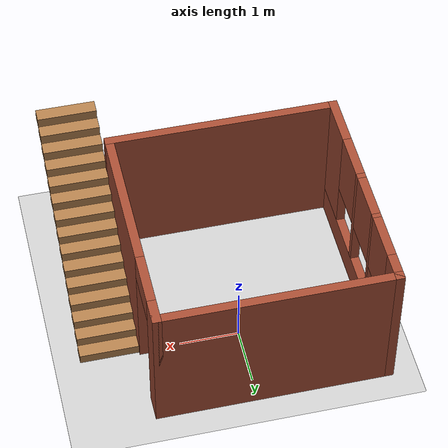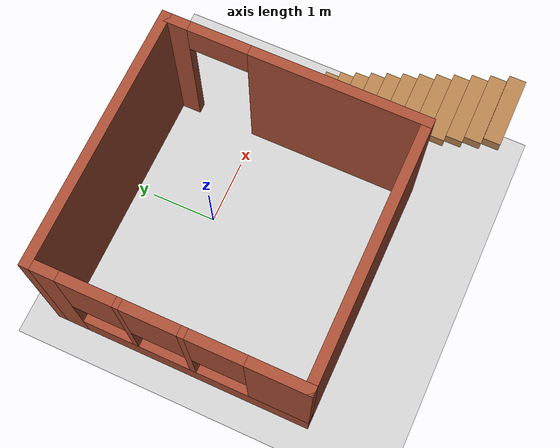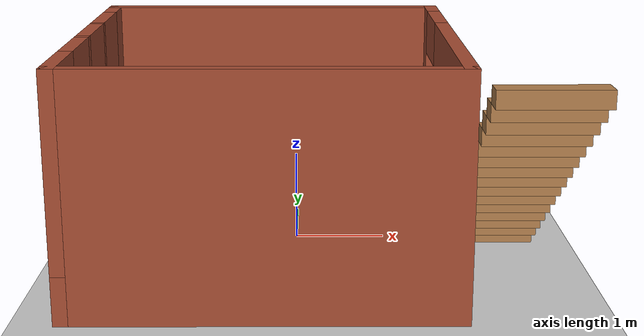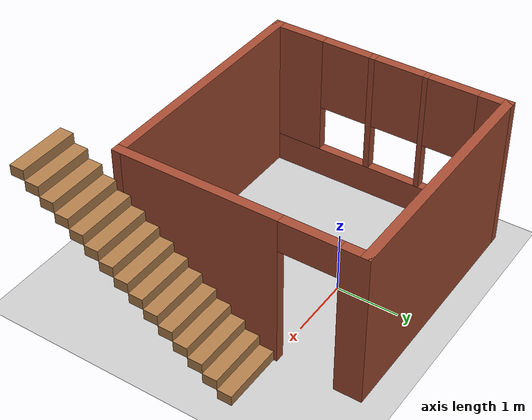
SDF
<sdf version="1.7">
 <world name="default">
  <light name="sun" type="directional">
   <pose>0 0 10 0 -0 0</pose>
   <diffuse>0.8 0.8 0.8 1</diffuse>
   <specular>0.2 0.2 0.2 1</specular>
   <attenuation>
    <range>1000</range>
    <constant>0.9</constant>
    <linear>0.01</linear>
    <quadratic>0.001</quadratic>
   </attenuation>
   <direction>-0.5 0.1 -0.9</direction>
  </light>
  <model name="ground_plane">
   <static>1</static>
   <link name="link">
    <collision name="collision">
     <geometry><plane><normal>0 0 1</normal><size>100 100</size></plane></geometry>
     <surface>
      <contact><collide_bitmask>65535</collide_bitmask></contact>
      <friction><ode><mu>100</mu><mu2>50</mu2></ode></friction>
     </surface>
    </collision>
    <visual name="visual">
     <cast_shadows>0</cast_shadows>
     <geometry><plane><normal>0 0 1</normal><size>100 100</size></plane></geometry>
     <material>
      <script><uri>file://media/materials/scripts/gazebo.material</uri><name>Gazebo/Grey</name></script>
     </material>
    </visual>
   </link>
  </model>
  <gravity>0 0 -9.8</gravity>
  <magnetic_field>6e-06 2.3e-05 -4.2e-05</magnetic_field>
  <atmosphere type="adiabatic"/>
  <physics type="ode">
   <max_step_size>0.001</max_step_size>
   <real_time_factor>1</real_time_factor>
   <real_time_update_rate>1000</real_time_update_rate>
  </physics>
  <scene><ambient>0.4 0.4 0.4 1</ambient><background>0.7 0.7 0.7 1</background><shadows>1</shadows></scene>
  <spherical_coordinates>
   <surface_model>EARTH_WGS84</surface_model>
   <latitude_deg>0</latitude_deg>
   <longitude_deg>0</longitude_deg>
   <elevation>0</elevation>
   <heading_deg>0</heading_deg>
  </spherical_coordinates>
  <model name="testing_world">
   <pose>0.201157 -1.03436 0 0 -0 0</pose>
   <link name="Stairs_0">
    <visual name="Stairs_0_Visual_0">
     <pose>1.99832 0.93694 0.083333 0 -0 0</pose>
     <geometry><box><size>1 0.233333 0.166667</size></box></geometry>
     <material>
      <script><uri>file://media/materials/scripts/gazebo.material</uri><name>Gazebo/Wood</name></script>
      <ambient>1 1 1 1</ambient>
     </material>
     <meta><layer>0</layer></meta>
    </visual>
    <collision name="Stairs_0_Collision_0">
     <geometry><box><size>1 0.233333 0.166667</size></box></geometry>
     <pose>1.99832 0.93694 0.083333 0 -0 0</pose>
    </collision>
    <visual name="Stairs_0_Visual_1">
     <pose>1.99832 0.703607 0.25 0 -0 0</pose>
     <geometry><box><size>1 0.233333 0.166667</size></box></geometry>
     <material>
      <script><uri>file://media/materials/scripts/gazebo.material</uri><name>Gazebo/Wood</name></script>
      <ambient>1 1 1 1</ambient>
     </material>
     <meta><layer>0</layer></meta>
    </visual>
    <collision name="Stairs_0_Collision_1">
     <geometry><box><size>1 0.233333 0.166667</size></box></geometry>
     <pose>1.99832 0.703607 0.25 0 -0 0</pose>
    </collision>
    <visual name="Stairs_0_Visual_2">
     <pose>1.99832 0.470273 0.416667 0 -0 0</pose>
     <geometry><box><size>1 0.233333 0.166667</size></box></geometry>
     <material>
      <script><uri>file://media/materials/scripts/gazebo.material</uri><name>Gazebo/Wood</name></script>
      <ambient>1 1 1 1</ambient>
     </material>
     <meta><layer>0</layer></meta>
    </visual>
    <collision name="Stairs_0_Collision_2">
     <geometry><box><size>1 0.233333 0.166667</size></box></geometry>
     <pose>1.99832 0.470273 0.416667 0 -0 0</pose>
    </collision>
    <visual name="Stairs_0_Visual_3">
     <pose>1.99832 0.23694 0.583333 0 -0 0</pose>
     <geometry><box><size>1 0.233333 0.166667</size></box></geometry>
     <material>
      <script><uri>file://media/materials/scripts/gazebo.material</uri><name>Gazebo/Wood</name></script>
      <ambient>1 1 1 1</ambient>
     </material>
     <meta><layer>0</layer></meta>
    </visual>
    <collision name="Stairs_0_Collision_3">
     <geometry><box><size>1 0.233333 0.166667</size></box></geometry>
     <pose>1.99832 0.23694 0.583333 0 -0 0</pose>
    </collision>
    <visual name="Stairs_0_Visual_4">
     <pose>1.99832 0.003607 0.75 0 -0 0</pose>
     <geometry><box><size>1 0.233333 0.166667</size></box></geometry>
     <material>
      <script><uri>file://media/materials/scripts/gazebo.material</uri><name>Gazebo/Wood</name></script>
      <ambient>1 1 1 1</ambient>
     </material>
     <meta><layer>0</layer></meta>
    </visual>
    <collision name="Stairs_0_Collision_4">
     <geometry><box><size>1 0.233333 0.166667</size></box></geometry>
     <pose>1.99832 0.003607 0.75 0 -0 0</pose>
    </collision>
    <visual name="Stairs_0_Visual_5">
     <pose>1.99832 -0.229727 0.916667 0 -0 0</pose>
     <geometry><box><size>1 0.233333 0.166667</size></box></geometry>
     <material>
      <script><uri>file://media/materials/scripts/gazebo.material</uri><name>Gazebo/Wood</name></script>
      <ambient>1 1 1 1</ambient>
     </material>
     <meta><layer>0</layer></meta>
    </visual>
    <collision name="Stairs_0_Collision_5">
     <geometry><box><size>1 0.233333 0.166667</size></box></geometry>
     <pose>1.99832 -0.229727 0.916667 0 -0 0</pose>
    </collision>
    <visual name="Stairs_0_Visual_6">
     <pose>1.99832 -0.46306 1.08333 0 -0 0</pose>
     <geometry><box><size>1 0.233333 0.166667</size></box></geometry>
     <material>
      <script><uri>file://media/materials/scripts/gazebo.material</uri><name>Gazebo/Wood</name></script>
      <ambient>1 1 1 1</ambient>
     </material>
     <meta><layer>0</layer></meta>
    </visual>
    <collision name="Stairs_0_Collision_6">
     <geometry><box><size>1 0.233333 0.166667</size></box></geometry>
     <pose>1.99832 -0.46306 1.08333 0 -0 0</pose>
    </collision>
    <visual name="Stairs_0_Visual_7">
     <pose>1.99832 -0.696393 1.25 0 -0 0</pose>
     <geometry><box><size>1 0.233333 0.166667</size></box></geometry>
     <material>
      <script><uri>file://media/materials/scripts/gazebo.material</uri><name>Gazebo/Wood</name></script>
      <ambient>1 1 1 1</ambient>
     </material>
     <meta><layer>0</layer></meta>
    </visual>
    <collision name="Stairs_0_Collision_7">
     <geometry><box><size>1 0.233333 0.166667</size></box></geometry>
     <pose>1.99832 -0.696393 1.25 0 -0 0</pose>
    </collision>
    <visual name="Stairs_0_Visual_8">
     <pose>1.99832 -0.929727 1.41667 0 -0 0</pose>
     <geometry><box><size>1 0.233333 0.166667</size></box></geometry>
     <material>
      <script><uri>file://media/materials/scripts/gazebo.material</uri><name>Gazebo/Wood</name></script>
      <ambient>1 1 1 1</ambient>
     </material>
     <meta><layer>0</layer></meta>
    </visual>
    <collision name="Stairs_0_Collision_8">
     <geometry><box><size>1 0.233333 0.166667</size></box></geometry>
     <pose>1.99832 -0.929727 1.41667 0 -0 0</pose>
    </collision>
    <visual name="Stairs_0_Visual_9">
     <pose>1.99832 -1.16306 1.58333 0 -0 0</pose>
     <geometry><box><size>1 0.233333 0.166667</size></box></geometry>
     <material>
      <script><uri>file://media/materials/scripts/gazebo.material</uri><name>Gazebo/Wood</name></script>
      <ambient>1 1 1 1</ambient>
     </material>
     <meta><layer>0</layer></meta>
    </visual>
    <collision name="Stairs_0_Collision_9">
     <geometry><box><size>1 0.233333 0.166667</size></box></geometry>
     <pose>1.99832 -1.16306 1.58333 0 -0 0</pose>
    </collision>
    <visual name="Stairs_0_Visual_10">
     <pose>1.99832 -1.39639 1.75 0 -0 0</pose>
     <geometry><box><size>1 0.233333 0.166667</size></box></geometry>
     <material>
      <script><uri>file://media/materials/scripts/gazebo.material</uri><name>Gazebo/Wood</name></script>
      <ambient>1 1 1 1</ambient>
     </material>
     <meta><layer>0</layer></meta>
    </visual>
    <collision name="Stairs_0_Collision_10">
     <geometry><box><size>1 0.233333 0.166667</size></box></geometry>
     <pose>1.99832 -1.39639 1.75 0 -0 0</pose>
    </collision>
    <visual name="Stairs_0_Visual_11">
     <pose>1.99832 -1.62973 1.91667 0 -0 0</pose>
     <geometry><box><size>1 0.233333 0.166667</size></box></geometry>
     <material>
      <script><uri>file://media/materials/scripts/gazebo.material</uri><name>Gazebo/Wood</name></script>
      <ambient>1 1 1 1</ambient>
     </material>
     <meta><layer>0</layer></meta>
    </visual>
    <collision name="Stairs_0_Collision_11">
     <geometry><box><size>1 0.233333 0.166667</size></box></geometry>
     <pose>1.99832 -1.62973 1.91667 0 -0 0</pose>
    </collision>
    <visual name="Stairs_0_Visual_12">
     <pose>1.99832 -1.86306 2.08333 0 -0 0</pose>
     <geometry><box><size>1 0.233333 0.166667</size></box></geometry>
     <material>
      <script><uri>file://media/materials/scripts/gazebo.material</uri><name>Gazebo/Wood</name></script>
      <ambient>1 1 1 1</ambient>
     </material>
     <meta><layer>0</layer></meta>
    </visual>
    <collision name="Stairs_0_Collision_12">
     <geometry><box><size>1 0.233333 0.166667</size></box></geometry>
     <pose>1.99832 -1.86306 2.08333 0 -0 0</pose>
    </collision>
    <visual name="Stairs_0_Visual_13">
     <pose>1.99832 -2.09639 2.25 0 -0 0</pose>
     <geometry><box><size>1 0.233333 0.166667</size></box></geometry>
     <material>
      <script><uri>file://media/materials/scripts/gazebo.material</uri><name>Gazebo/Wood</name></script>
      <ambient>1 1 1 1</ambient>
     </material>
     <meta><layer>0</layer></meta>
    </visual>
    <collision name="Stairs_0_Collision_13">
     <geometry><box><size>1 0.233333 0.166667</size></box></geometry>
     <pose>1.99832 -2.09639 2.25 0 -0 0</pose>
    </collision>
    <visual name="Stairs_0_Visual_14">
     <pose>1.99832 -2.32973 2.41667 0 -0 0</pose>
     <geometry><box><size>1 0.233333 0.166667</size></box></geometry>
     <material>
      <script><uri>file://media/materials/scripts/gazebo.material</uri><name>Gazebo/Wood</name></script>
      <ambient>1 1 1 1</ambient>
     </material>
     <meta><layer>0</layer></meta>
    </visual>
    <collision name="Stairs_0_Collision_14">
     <geometry><box><size>1 0.233333 0.166667</size></box></geometry>
     <pose>1.99832 -2.32973 2.41667 0 -0 0</pose>
    </collision>
   </link>
   <link name="Wall_2">
    <pose>-2.42333 0.446393 0 0 -0 -1.5708</pose>
    <visual name="Wall_2_Visual_0">
     <pose>-1.74645 0 1.25 0 -0 0</pose>
     <geometry><box><size>0.5071 0.15 2.5</size></box></geometry>
     <material>
      <script><uri>file://media/materials/scripts/gazebo.material</uri><name>Gazebo/Bricks</name></script>
      <ambient>1 1 1 1</ambient>
     </material>
     <meta><layer>0</layer></meta>
    </visual>
    <collision name="Wall_2_Collision_0">
     <geometry><box><size>0.5071 0.15 2.5</size></box></geometry>
     <pose>-1.74645 0 1.25 0 -0 0</pose>
    </collision>
    <visual name="Wall_2_Visual_1">
     <pose>0.25355 0 0.25 0 -0 0</pose>
     <geometry><box><size>3.4929 0.15 0.5</size></box></geometry>
     <material>
      <script><uri>file://media/materials/scripts/gazebo.material</uri><name>Gazebo/Bricks</name></script>
      <ambient>1 1 1 1</ambient>
     </material>
     <meta><layer>0</layer></meta>
    </visual>
    <collision name="Wall_2_Collision_1">
     <geometry><box><size>3.4929 0.15 0.5</size></box></geometry>
     <pose>0.25355 0 0.25 0 -0 0</pose>
    </collision>
    <visual name="Wall_2_Visual_2">
     <pose>-0.651846 0 1.5 0 -0 0</pose>
     <geometry><box><size>0.082107 0.15 2</size></box></geometry>
     <material>
      <script><uri>file://media/materials/scripts/gazebo.material</uri><name>Gazebo/Bricks</name></script>
      <ambient>1 1 1 1</ambient>
     </material>
     <meta><layer>0</layer></meta>
    </visual>
    <collision name="Wall_2_Collision_2">
     <geometry><box><size>0.082107 0.15 2</size></box></geometry>
     <pose>-0.651846 0 1.5 0 -0 0</pose>
    </collision>
    <visual name="Wall_2_Visual_3">
     <pose>0.237866 0 1.5 0 -0 0</pose>
     <geometry><box><size>0.097316 0.15 2</size></box></geometry>
     <material>
      <script><uri>file://media/materials/scripts/gazebo.material</uri><name>Gazebo/Bricks</name></script>
      <ambient>1 1 1 1</ambient>
     </material>
     <meta><layer>0</layer></meta>
    </visual>
    <collision name="Wall_2_Collision_3">
     <geometry><box><size>0.097316 0.15 2</size></box></geometry>
     <pose>0.237866 0 1.5 0 -0 0</pose>
    </collision>
    <visual name="Wall_2_Visual_4">
     <pose>1.54326 0 1.5 0 -0 0</pose>
     <geometry><box><size>0.913476 0.15 2</size></box></geometry>
     <material>
      <script><uri>file://media/materials/scripts/gazebo.material</uri><name>Gazebo/Bricks</name></script>
      <ambient>1 1 1 1</ambient>
     </material>
     <meta><layer>0</layer></meta>
    </visual>
    <collision name="Wall_2_Collision_4">
     <geometry><box><size>0.913476 0.15 2</size></box></geometry>
     <pose>1.54326 0 1.5 0 -0 0</pose>
    </collision>
    <visual name="Wall_2_Visual_5">
     <pose>-1.0929 0 1.9 0 -0 0</pose>
     <geometry><box><size>0.8 0.15 1.2</size></box></geometry>
     <material>
      <script><uri>file://media/materials/scripts/gazebo.material</uri><name>Gazebo/Bricks</name></script>
      <ambient>1 1 1 1</ambient>
     </material>
     <meta><layer>0</layer></meta>
    </visual>
    <collision name="Wall_2_Collision_5">
     <geometry><box><size>0.8 0.15 1.2</size></box></geometry>
     <pose>-1.0929 0 1.9 0 -0 0</pose>
    </collision>
    <visual name="Wall_2_Visual_6">
     <pose>-0.210792 0 1.9 0 -0 0</pose>
     <geometry><box><size>0.8 0.15 1.2</size></box></geometry>
     <material>
      <script><uri>file://media/materials/scripts/gazebo.material</uri><name>Gazebo/Bricks</name></script>
      <ambient>1 1 1 1</ambient>
     </material>
     <meta><layer>0</layer></meta>
    </visual>
    <collision name="Wall_2_Collision_6">
     <geometry><box><size>0.8 0.15 1.2</size></box></geometry>
     <pose>-0.210792 0 1.9 0 -0 0</pose>
    </collision>
    <visual name="Wall_2_Visual_7">
     <pose>0.686524 0 1.9 0 -0 0</pose>
     <geometry><box><size>0.8 0.15 1.2</size></box></geometry>
     <material>
      <script><uri>file://media/materials/scripts/gazebo.material</uri><name>Gazebo/Bricks</name></script>
      <ambient>1 1 1 1</ambient>
     </material>
     <meta><layer>0</layer></meta>
    </visual>
    <collision name="Wall_2_Collision_7">
     <geometry><box><size>0.8 0.15 1.2</size></box></geometry>
     <pose>0.686524 0 1.9 0 -0 0</pose>
    </collision>
   </link>
   <link name="Wall_5">
    <collision name="Wall_5_Collision">
     <geometry><box><size>4 0.15 2.5</size></box></geometry>
     <pose>0 0 1.25 0 -0 0</pose>
    </collision>
    <visual name="Wall_5_Visual">
     <pose>0 0 1.25 0 -0 0</pose>
     <geometry><box><size>4 0.15 2.5</size></box></geometry>
     <material>
      <script><uri>file://media/materials/scripts/gazebo.material</uri><name>Gazebo/Bricks</name></script>
      <ambient>1 1 1 1</ambient>
     </material>
     <meta><layer>0</layer></meta>
    </visual>
    <pose>-0.498325 2.37139 0 0 -0 0</pose>
   </link>
   <link name="Wall_6">
    <pose>1.42667 0.446393 0 0 -0 -1.5708</pose>
    <visual name="Wall_6_Visual_0">
     <pose>-1.77905 0 1.25 0 -0 0</pose>
     <geometry><box><size>0.441891 0.15 2.5</size></box></geometry>
     <material>
      <script><uri>file://media/materials/scripts/gazebo.material</uri><name>Gazebo/Bricks</name></script>
      <ambient>1 1 1 1</ambient>
     </material>
     <meta><layer>0</layer></meta>
    </visual>
    <collision name="Wall_6_Collision_0">
     <geometry><box><size>0.441891 0.15 2.5</size></box></geometry>
     <pose>-1.77905 0 1.25 0 -0 0</pose>
    </collision>
    <visual name="Wall_6_Visual_1">
     <pose>0.670946 0 1.25 0 -0 0</pose>
     <geometry><box><size>2.65811 0.15 2.5</size></box></geometry>
     <material>
      <script><uri>file://media/materials/scripts/gazebo.material</uri><name>Gazebo/Bricks</name></script>
      <ambient>1 1 1 1</ambient>
     </material>
     <meta><layer>0</layer></meta>
    </visual>
    <collision name="Wall_6_Collision_1">
     <geometry><box><size>2.65811 0.15 2.5</size></box></geometry>
     <pose>0.670946 0 1.25 0 -0 0</pose>
    </collision>
    <visual name="Wall_6_Visual_2">
     <pose>-1.10811 0 2.25 0 -0 0</pose>
     <geometry><box><size>0.9 0.15 0.5</size></box></geometry>
     <material>
      <script><uri>file://media/materials/scripts/gazebo.material</uri><name>Gazebo/Bricks</name></script>
      <ambient>1 1 1 1</ambient>
     </material>
     <meta><layer>0</layer></meta>
    </visual>
    <collision name="Wall_6_Collision_2">
     <geometry><box><size>0.9 0.15 0.5</size></box></geometry>
     <pose>-1.10811 0 2.25 0 -0 0</pose>
    </collision>
   </link>
   <link name="Wall_7">
    <collision name="Wall_7_Collision">
     <geometry><box><size>4 0.15 2.5</size></box></geometry>
     <pose>0 0 1.25 0 -0 0</pose>
    </collision>
    <visual name="Wall_7_Visual">
     <pose>0 0 1.25 0 -0 0</pose>
     <geometry><box><size>4 0.15 2.5</size></box></geometry>
     <material>
      <script><uri>file://media/materials/scripts/gazebo.material</uri><name>Gazebo/Bricks</name></script>
      <ambient>1 1 1 1</ambient>
     </material>
     <meta><layer>0</layer></meta>
    </visual>
    <pose>-0.498325 -1.47861 0 0 -0 3.14159</pose>
   </link>
   <static>1</static>
  </model>
 </world>
</sdf>
